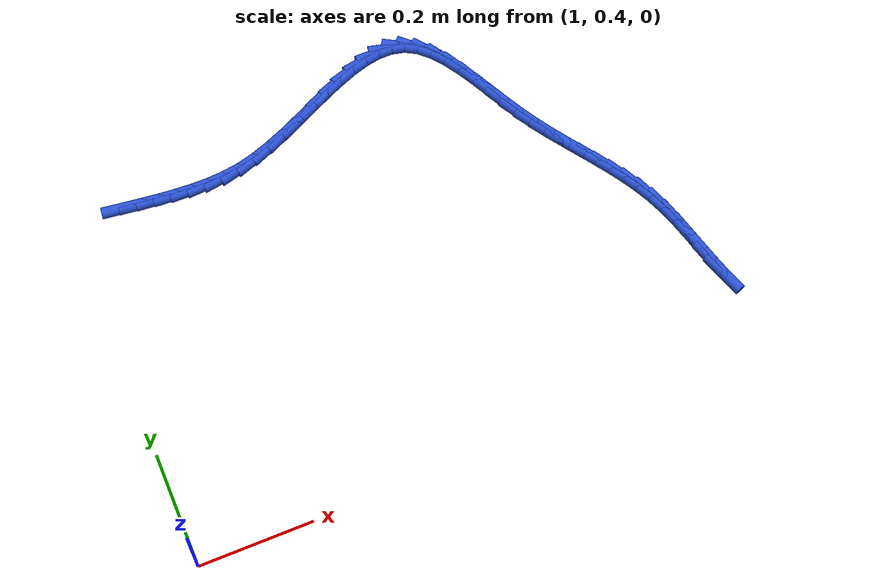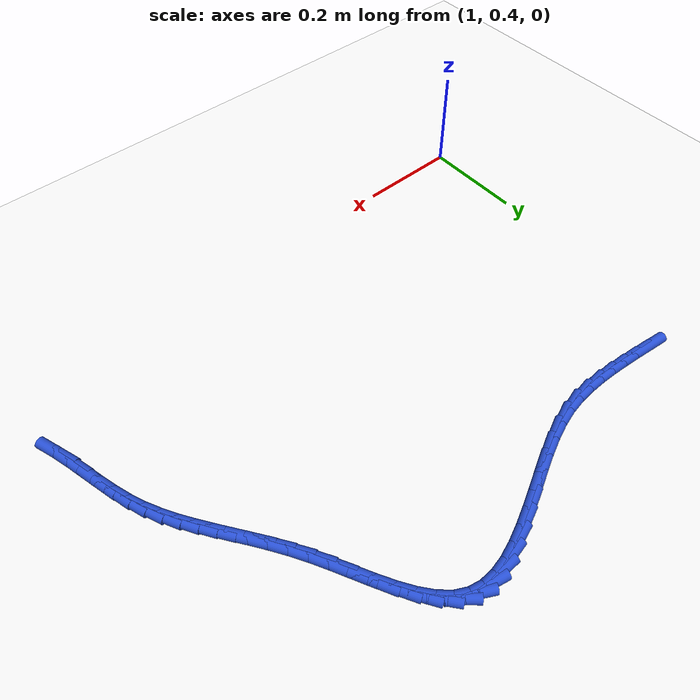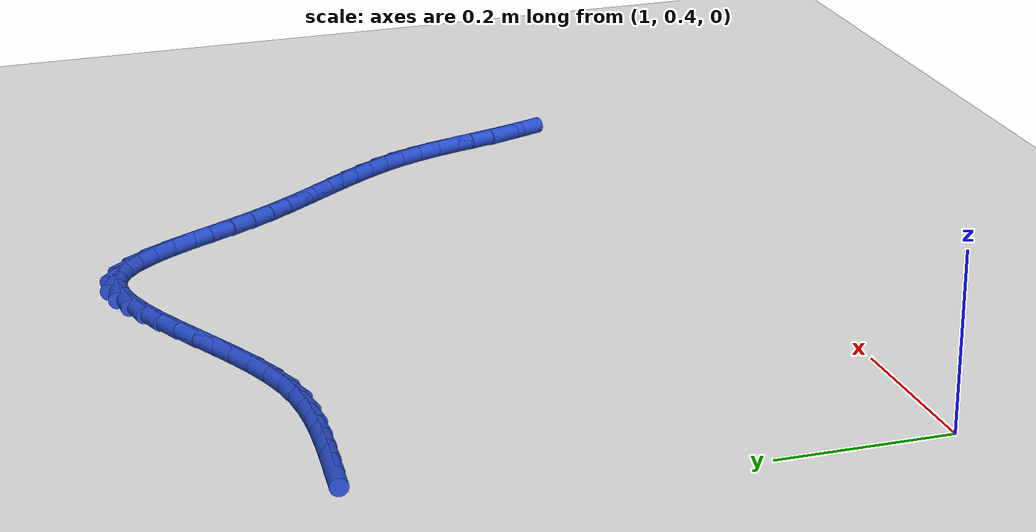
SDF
<sdf version="1.6">
 <world name="default">
  <model name="ground_plane">
   <static>1</static>
   <link name="link">
    <collision name="collision">
     <geometry><plane><normal>0 0 1</normal><size>100 100</size></plane></geometry>
     <surface><friction><ode><mu>100</mu><mu2>50</mu2></ode></friction></surface>
    </collision>
    <visual name="visual">
     <cast_shadows>0</cast_shadows>
     <geometry><plane><normal>0 0 1</normal><size>100 100</size></plane></geometry>
     <material>
      <script><uri>file://media/materials/scripts/gazebo.material</uri><name>Gazebo/WhiteGlow</name></script>
     </material>
    </visual>
   </link>
  </model>
  <model name="line">
   <link name="link_56">
    <pose>1.0972646162753887 1.0256910370883754 0.01 0 1.57 -0.1243517160511117</pose>
    <collision name="collision">
     <geometry><cylinder><radius>0.01</radius><length>0.08</length></cylinder></geometry>
    </collision>
    <visual name="visual">
     <material>
      <script><name>Gazebo/Blue</name><uri>file://media/materials/scripts/gazebo.material</uri></script>
     </material>
     <geometry><cylinder><radius>0.01</radius><length>0.08</length></cylinder></geometry>
    </visual>
   </link>
   <link name="link_57">
    <pose>1.1268595501378365 1.0219917688984357 0.01 0 1.57 -0.10980732972290626</pose>
    <collision name="collision">
     <geometry><cylinder><radius>0.01</radius><length>0.08</length></cylinder></geometry>
    </collision>
    <visual name="visual">
     <material>
      <script><name>Gazebo/Blue</name><uri>file://media/materials/scripts/gazebo.material</uri></script>
     </material>
     <geometry><cylinder><radius>0.01</radius><length>0.08</length></cylinder></geometry>
    </visual>
   </link>
   <link name="link_58">
    <pose>1.156405279717139 1.0187343283332702 0.01 0 1.57 -0.08743686101702561</pose>
    <collision name="collision">
     <geometry><cylinder><radius>0.01</radius><length>0.08</length></cylinder></geometry>
    </collision>
    <visual name="visual">
     <material>
      <script><name>Gazebo/Blue</name><uri>file://media/materials/scripts/gazebo.material</uri></script>
     </material>
     <geometry><cylinder><radius>0.01</radius><length>0.08</length></cylinder></geometry>
    </visual>
   </link>
   <link name="link_59">
    <pose>1.185900281993981 1.0161487855565294 0.01 0 1.57 -0.05635765165588818</pose>
    <collision name="collision">
     <geometry><cylinder><radius>0.01</radius><length>0.08</length></cylinder></geometry>
    </collision>
    <visual name="visual">
     <material>
      <script><name>Gazebo/Blue</name><uri>file://media/materials/scripts/gazebo.material</uri></script>
     </material>
     <geometry><cylinder><radius>0.01</radius><length>0.08</length></cylinder></geometry>
    </visual>
   </link>
   <link name="link_60">
    <pose>1.215351064227917 1.0144872491421746 0.01 0 1.57 -0.008259198600788196</pose>
    <collision name="collision">
     <geometry><cylinder><radius>0.01</radius><length>0.08</length></cylinder></geometry>
    </collision>
    <visual name="visual">
     <material>
      <script><name>Gazebo/Blue</name><uri>file://media/materials/scripts/gazebo.material</uri></script>
     </material>
     <geometry><cylinder><radius>0.01</radius><length>0.08</length></cylinder></geometry>
    </visual>
   </link>
   <link name="link_61">
    <pose>1.2448522253377379 1.0142435876531852 0.01 0 1.57 0.0611166905343832</pose>
    <collision name="collision">
     <geometry><cylinder><radius>0.01</radius><length>0.08</length></cylinder></geometry>
    </collision>
    <visual name="visual">
     <material>
      <script><name>Gazebo/Blue</name><uri>file://media/materials/scripts/gazebo.material</uri></script>
     </material>
     <geometry><cylinder><radius>0.01</radius><length>0.08</length></cylinder></geometry>
    </visual>
   </link>
   <link name="link_62">
    <pose>1.2745527955387879 1.0160610516686273 0.01 0 1.57 0.14942943219591917</pose>
    <collision name="collision">
     <geometry><cylinder><radius>0.01</radius><length>0.08</length></cylinder></geometry>
    </collision>
    <visual name="visual">
     <material>
      <script><name>Gazebo/Blue</name><uri>file://media/materials/scripts/gazebo.material</uri></script>
     </material>
     <geometry><cylinder><radius>0.01</radius><length>0.08</length></cylinder></geometry>
    </visual>
   </link>
   <link name="link_63">
    <pose>1.3046026101757537 1.0205851013758647 0.01 0 1.57 0.25008186617776634</pose>
    <collision name="collision">
     <geometry><cylinder><radius>0.01</radius><length>0.08</length></cylinder></geometry>
    </collision>
    <visual name="visual">
     <material>
      <script><name>Gazebo/Blue</name><uri>file://media/materials/scripts/gazebo.material</uri></script>
     </material>
     <geometry><cylinder><radius>0.01</radius><length>0.08</length></cylinder></geometry>
    </visual>
   </link>
   <link name="link_64">
    <pose>1.3351321515746652 1.0283832354786882 0.01 0 1.57 0.33535875574656215</pose>
    <collision name="collision">
     <geometry><cylinder><radius>0.01</radius><length>0.08</length></cylinder></geometry>
    </collision>
    <visual name="visual">
     <material>
      <script><name>Gazebo/Blue</name><uri>file://media/materials/scripts/gazebo.material</uri></script>
     </material>
     <geometry><cylinder><radius>0.01</radius><length>0.08</length></cylinder></geometry>
    </visual>
   </link>
   <link name="link_65">
    <pose>1.3660580938190656 1.0391616499519527 0.01 0 1.57 0.3939400495281755</pose>
    <collision name="collision">
     <geometry><cylinder><radius>0.01</radius><length>0.08</length></cylinder></geometry>
    </collision>
    <visual name="visual">
     <material>
      <script><name>Gazebo/Blue</name><uri>file://media/materials/scripts/gazebo.material</uri></script>
     </material>
     <geometry><cylinder><radius>0.01</radius><length>0.08</length></cylinder></geometry>
    </visual>
   </link>
   <link name="link_66">
    <pose>1.397164295591988 1.0520915086988987 0.01 0 1.57 0.4298895183108862</pose>
    <collision name="collision">
     <geometry><cylinder><radius>0.01</radius><length>0.08</length></cylinder></geometry>
    </collision>
    <visual name="visual">
     <material>
      <script><name>Gazebo/Blue</name><uri>file://media/materials/scripts/gazebo.material</uri></script>
     </material>
     <geometry><cylinder><radius>0.01</radius><length>0.08</length></cylinder></geometry>
    </visual>
   </link>
   <link name="link_67">
    <pose>1.4282326212708085 1.0663359417841962 0.01 0 1.57 0.44573077141376255</pose>
    <collision name="collision">
     <geometry><cylinder><radius>0.01</radius><length>0.08</length></cylinder></geometry>
    </collision>
    <visual name="visual">
     <material>
      <script><name>Gazebo/Blue</name><uri>file://media/materials/scripts/gazebo.material</uri></script>
     </material>
     <geometry><cylinder><radius>0.01</radius><length>0.08</length></cylinder></geometry>
    </visual>
   </link>
   <link name="link_68">
    <pose>1.4590449352329022 1.081058079272515 0.01 0 1.57 0.44216587081122244</pose>
    <collision name="collision">
     <geometry><cylinder><radius>0.01</radius><length>0.08</length></cylinder></geometry>
    </collision>
    <visual name="visual">
     <material>
      <script><name>Gazebo/Blue</name><uri>file://media/materials/scripts/gazebo.material</uri></script>
     </material>
     <geometry><cylinder><radius>0.01</radius><length>0.08</length></cylinder></geometry>
    </visual>
   </link>
   <link name="link_69">
    <pose>1.489383101855645 1.0954210512285256 0.01 0 1.57 0.4179704605778861</pose>
    <collision name="collision">
     <geometry><cylinder><radius>0.01</radius><length>0.08</length></cylinder></geometry>
    </collision>
    <visual name="visual">
     <material>
      <script><name>Gazebo/Blue</name><uri>file://media/materials/scripts/gazebo.material</uri></script>
     </material>
     <geometry><cylinder><radius>0.01</radius><length>0.08</length></cylinder></geometry>
    </visual>
   </link>
   <link name="link_70">
    <pose>1.5190289855164125 1.1085879877168978 0.01 0 1.57 0.36965519244252804</pose>
    <collision name="collision">
     <geometry><cylinder><radius>0.01</radius><length>0.08</length></cylinder></geometry>
    </collision>
    <visual name="visual">
     <material>
      <script><name>Gazebo/Blue</name><uri>file://media/materials/scripts/gazebo.material</uri></script>
     </material>
     <geometry><cylinder><radius>0.01</radius><length>0.08</length></cylinder></geometry>
    </visual>
   </link>
   <link name="link_71">
    <pose>1.5477644505925805 1.1197220188023014 0.01 0 1.57 0.29086457881611877</pose>
    <collision name="collision">
     <geometry><cylinder><radius>0.01</radius><length>0.08</length></cylinder></geometry>
    </collision>
    <visual name="visual">
     <material>
      <script><name>Gazebo/Blue</name><uri>file://media/materials/scripts/gazebo.material</uri></script>
     </material>
     <geometry><cylinder><radius>0.01</radius><length>0.08</length></cylinder></geometry>
    </visual>
   </link>
   <link name="link_72">
    <pose>1.5753713614615246 1.1279862745494067 0.01 0 1.57 0.17184391983965852</pose>
    <collision name="collision">
     <geometry><cylinder><radius>0.01</radius><length>0.08</length></cylinder></geometry>
    </collision>
    <visual name="visual">
     <material>
      <script><name>Gazebo/Blue</name><uri>file://media/materials/scripts/gazebo.material</uri></script>
     </material>
     <geometry><cylinder><radius>0.01</radius><length>0.08</length></cylinder></geometry>
    </visual>
   </link>
   <link name="link_73">
    <pose>1.60163158250062 1.1325438850228837 0.01 0 1.57 0.0005707648188440943</pose>
    <collision name="collision">
     <geometry><cylinder><radius>0.01</radius><length>0.08</length></cylinder></geometry>
    </collision>
    <visual name="visual">
     <material>
      <script><name>Gazebo/Blue</name><uri>file://media/materials/scripts/gazebo.material</uri></script>
     </material>
     <geometry><cylinder><radius>0.01</radius><length>0.08</length></cylinder></geometry>
    </visual>
   </link>
   <link name="link_74">
    <pose>1.626326978087243 1.1325579802874026 0.01 0 1.57 -0.23006187383835505</pose>
    <collision name="collision">
     <geometry><cylinder><radius>0.01</radius><length>0.08</length></cylinder></geometry>
    </collision>
    <visual name="visual">
     <material>
      <script><name>Gazebo/Blue</name><uri>file://media/materials/scripts/gazebo.material</uri></script>
     </material>
     <geometry><cylinder><radius>0.01</radius><length>0.08</length></cylinder></geometry>
    </visual>
   </link>
   <link name="link_75">
    <pose>1.6492394125987686 1.1271916904076331 0.01 0 1.57 -0.4998905959864863</pose>
    <collision name="collision">
     <geometry><cylinder><radius>0.01</radius><length>0.08</length></cylinder></geometry>
    </collision>
    <visual name="visual">
     <material>
      <script><name>Gazebo/Blue</name><uri>file://media/materials/scripts/gazebo.material</uri></script>
     </material>
     <geometry><cylinder><radius>0.01</radius><length>0.08</length></cylinder></geometry>
    </visual>
   </link>
   <link name="link_76">
    <pose>1.670193851416984 1.1157472048180916 0.01 0 1.57 -0.7271024810349903</pose>
    <collision name="collision">
     <geometry><cylinder><radius>0.01</radius><length>0.08</length></cylinder></geometry>
    </collision>
    <visual name="visual">
     <material>
      <script><name>Gazebo/Blue</name><uri>file://media/materials/scripts/gazebo.material</uri></script>
     </material>
     <geometry><cylinder><radius>0.01</radius><length>0.08</length></cylinder></geometry>
    </visual>
   </link>
   <link name="link_77">
    <pose>1.6893735726147119 1.098682758797335 0.01 0 1.57 -0.8836952000375713</pose>
    <collision name="collision">
     <geometry><cylinder><radius>0.01</radius><length>0.08</length></cylinder></geometry>
    </collision>
    <visual name="visual">
     <material>
      <script><name>Gazebo/Blue</name><uri>file://media/materials/scripts/gazebo.material</uri></script>
     </material>
     <geometry><cylinder><radius>0.01</radius><length>0.08</length></cylinder></geometry>
    </visual>
   </link>
   <link name="link_78">
    <pose>1.7071394502286417 1.0770295761925144 0.01 0 1.57 -0.98527541732175</pose>
    <collision name="collision">
     <geometry><cylinder><radius>0.01</radius><length>0.08</length></cylinder></geometry>
    </collision>
    <visual name="visual">
     <material>
      <script><name>Gazebo/Blue</name><uri>file://media/materials/scripts/gazebo.material</uri></script>
     </material>
     <geometry><cylinder><radius>0.01</radius><length>0.08</length></cylinder></geometry>
    </visual>
   </link>
   <link name="link_79">
    <pose>1.7238536321990623 1.0518229909227907 0.01 0 1.57 -1.0467162234346208</pose>
    <collision name="collision">
     <geometry><cylinder><radius>0.01</radius><length>0.08</length></cylinder></geometry>
    </collision>
    <visual name="visual">
     <material>
      <script><name>Gazebo/Blue</name><uri>file://media/materials/scripts/gazebo.material</uri></script>
     </material>
     <geometry><cylinder><radius>0.01</radius><length>0.08</length></cylinder></geometry>
    </visual>
   </link>
   <link name="link_80">
    <pose>1.7398782664662635 1.0240983369073253 0.01 0 1.57 -1.0776468118597726</pose>
    <collision name="collision">
     <geometry><cylinder><radius>0.01</radius><length>0.08</length></cylinder></geometry>
    </collision>
    <visual name="visual">
     <material>
      <script><name>Gazebo/Blue</name><uri>file://media/materials/scripts/gazebo.material</uri></script>
     </material>
     <geometry><cylinder><radius>0.01</radius><length>0.08</length></cylinder></geometry>
    </visual>
   </link>
   <link name="link_81">
    <pose>1.7555755009705327 0.9948909480652782 0.01 0 1.57 -1.0830444059983302</pose>
    <collision name="collision">
     <geometry><cylinder><radius>0.01</radius><length>0.08</length></cylinder></geometry>
    </collision>
    <visual name="visual">
     <material>
      <script><name>Gazebo/Blue</name><uri>file://media/materials/scripts/gazebo.material</uri></script>
     </material>
     <geometry><cylinder><radius>0.01</radius><length>0.08</length></cylinder></geometry>
    </visual>
   </link>
   <link name="link_82">
    <pose>1.77130748365216 0.965236158315811 0.01 0 1.57 -1.064207322664841</pose>
    <collision name="collision">
     <geometry><cylinder><radius>0.01</radius><length>0.08</length></cylinder></geometry>
    </collision>
    <visual name="visual">
     <material>
      <script><name>Gazebo/Blue</name><uri>file://media/materials/scripts/gazebo.material</uri></script>
     </material>
     <geometry><cylinder><radius>0.01</radius><length>0.08</length></cylinder></geometry>
    </visual>
   </link>
   <link name="link_83">
    <pose>1.7874363624514342 0.9361693015780844 0.01 0 1.57 -1.023710059965437</pose>
    <collision name="collision">
     <geometry><cylinder><radius>0.01</radius><length>0.08</length></cylinder></geometry>
    </collision>
    <visual name="visual">
     <material>
      <script><name>Gazebo/Blue</name><uri>file://media/materials/scripts/gazebo.material</uri></script>
     </material>
     <geometry><cylinder><radius>0.01</radius><length>0.08</length></cylinder></geometry>
    </visual>
   </link>
   <link name="link_84">
    <pose>1.804249563611364 0.9085661023460609 0.01 0 1.57 -0.984880510793661</pose>
    <collision name="collision">
     <geometry><cylinder><radius>0.01</radius><length>0.08</length></cylinder></geometry>
    </collision>
    <visual name="visual">
     <material>
      <script><name>Gazebo/Blue</name><uri>file://media/materials/scripts/gazebo.material</uri></script>
     </material>
     <geometry><cylinder><radius>0.01</radius><length>0.08</length></cylinder></geometry>
    </visual>
   </link>
   <link name="link_85">
    <pose>1.8216132490646366 0.8824024426733574 0.01 0 1.57 -0.9577037035107082</pose>
    <collision name="collision">
     <geometry><cylinder><radius>0.01</radius><length>0.08</length></cylinder></geometry>
    </collision>
    <visual name="visual">
     <material>
      <script><name>Gazebo/Blue</name><uri>file://media/materials/scripts/gazebo.material</uri></script>
     </material>
     <geometry><cylinder><radius>0.01</radius><length>0.08</length></cylinder></geometry>
    </visual>
   </link>
   <link name="link_86">
    <pose>1.8392460849113683 0.8573391458567308 0.01 0 1.57 -0.9434551822479464</pose>
    <collision name="collision">
     <geometry><cylinder><radius>0.01</radius><length>0.08</length></cylinder></geometry>
    </collision>
    <visual name="visual">
     <material>
      <script><name>Gazebo/Blue</name><uri>file://media/materials/scripts/gazebo.material</uri></script>
     </material>
     <geometry><cylinder><radius>0.01</radius><length>0.08</length></cylinder></geometry>
    </visual>
   </link>
   <link name="link_87">
    <pose>1.8568665801765267 0.8330366996722612 0.01 0 1.57 -0.9431352384406895</pose>
    <collision name="collision">
     <geometry><cylinder><radius>0.01</radius><length>0.08</length></cylinder></geometry>
    </collision>
    <visual name="visual">
     <material>
      <script><name>Gazebo/Blue</name><uri>file://media/materials/scripts/gazebo.material</uri></script>
     </material>
     <geometry><cylinder><radius>0.01</radius><length>0.08</length></cylinder></geometry>
    </visual>
   </link>
   <link name="link_88">
    <pose>1.8741932438850775 0.8091555918960279 0.01 0 1.57 -0.9574850481734419</pose>
    <collision name="collision">
     <geometry><cylinder><radius>0.01</radius><length>0.08</length></cylinder></geometry>
    </collision>
    <visual name="visual">
     <material>
      <script><name>Gazebo/Blue</name><uri>file://media/materials/scripts/gazebo.material</uri></script>
     </material>
     <geometry><cylinder><radius>0.01</radius><length>0.08</length></cylinder></geometry>
    </visual>
   </link>
   <link name="link_89">
    <pose>1.8909445850619886 0.78535631030411 0.01 0 1.57 -0.9869332958429147</pose>
    <collision name="collision">
     <geometry><cylinder><radius>0.01</radius><length>0.08</length></cylinder></geometry>
    </collision>
    <visual name="visual">
     <material>
      <script><name>Gazebo/Blue</name><uri>file://media/materials/scripts/gazebo.material</uri></script>
     </material>
     <geometry><cylinder><radius>0.01</radius><length>0.08</length></cylinder></geometry>
    </visual>
   </link>
   <link name="link_90">
    <pose>1.9068391127322266 0.7612993426725871 0.01 0 1.57 -1.0314594468775058</pose>
    <collision name="collision">
     <geometry><cylinder><radius>0.01</radius><length>0.08</length></cylinder></geometry>
    </collision>
    <visual name="visual">
     <material>
      <script><name>Gazebo/Blue</name><uri>file://media/materials/scripts/gazebo.material</uri></script>
     </material>
     <geometry><cylinder><radius>0.01</radius><length>0.08</length></cylinder></geometry>
    </visual>
   </link>
   <link name="link_91">
    <pose>1.9215953359207578 0.7366451767775387 0.01 0 1.57 -1.0903801471559447</pose>
    <collision name="collision">
     <geometry><cylinder><radius>0.01</radius><length>0.08</length></cylinder></geometry>
    </collision>
    <visual name="visual">
     <material>
      <script><name>Gazebo/Blue</name><uri>file://media/materials/scripts/gazebo.material</uri></script>
     </material>
     <geometry><cylinder><radius>0.01</radius><length>0.08</length></cylinder></geometry>
    </visual>
   </link>
   <link name="link_92">
    <pose>1.934931763652549 0.7110543003950445 0.01 0 1.57 -1.161731686605096</pose>
    <collision name="collision">
     <geometry><cylinder><radius>0.01</radius><length>0.08</length></cylinder></geometry>
    </collision>
    <visual name="visual">
     <material>
      <script><name>Gazebo/Blue</name><uri>file://media/materials/scripts/gazebo.material</uri></script>
     </material>
     <geometry><cylinder><radius>0.01</radius><length>0.08</length></cylinder></geometry>
    </visual>
   </link>
   <link name="link_93">
    <pose>1.946575748586977 0.6841951114296162 0.01 0 1.57 -1.2285390891314243</pose>
    <collision name="collision">
     <geometry><cylinder><radius>0.01</radius><length>0.08</length></cylinder></geometry>
    </collision>
    <visual name="visual">
     <material>
      <script><name>Gazebo/Blue</name><uri>file://media/materials/scripts/gazebo.material</uri></script>
     </material>
     <geometry><cylinder><radius>0.01</radius><length>0.08</length></cylinder></geometry>
    </visual>
   </link>
   <link name="link_94">
    <pose>1.956603839460509 0.6560483438333529 0.01 0 1.57 -1.2720278520069448</pose>
    <collision name="collision">
     <geometry><cylinder><radius>0.01</radius><length>0.08</length></cylinder></geometry>
    </collision>
    <visual name="visual">
     <material>
      <script><name>Gazebo/Blue</name><uri>file://media/materials/scripts/gazebo.material</uri></script>
     </material>
     <geometry><cylinder><radius>0.01</radius><length>0.08</length></cylinder></geometry>
    </visual>
   </link>
   <link name="link_95">
    <pose>1.9655493518860925 0.6270032835731909 0.01 0 1.57 -1.292779798058975</pose>
    <collision name="collision">
     <geometry><cylinder><radius>0.01</radius><length>0.08</length></cylinder></geometry>
    </collision>
    <visual name="visual">
     <material>
      <script><name>Gazebo/Blue</name><uri>file://media/materials/scripts/gazebo.material</uri></script>
     </material>
     <geometry><cylinder><radius>0.01</radius><length>0.08</length></cylinder></geometry>
    </visual>
   </link>
   <link name="link_96">
    <pose>1.973976446791955 0.597476805997773 0.01 0 1.57 -1.2919262130516418</pose>
    <collision name="collision">
     <geometry><cylinder><radius>0.01</radius><length>0.08</length></cylinder></geometry>
    </collision>
    <visual name="visual">
     <material>
      <script><name>Gazebo/Blue</name><uri>file://media/materials/scripts/gazebo.material</uri></script>
     </material>
     <geometry><cylinder><radius>0.01</radius><length>0.08</length></cylinder></geometry>
    </visual>
   </link>
   <link name="link_97">
    <pose>1.9824492851063238 0.5678857864557418 0.01 0 1.57 -1.269605714386445</pose>
    <collision name="collision">
     <geometry><cylinder><radius>0.01</radius><length>0.08</length></cylinder></geometry>
    </collision>
    <visual name="visual">
     <material>
      <script><name>Gazebo/Blue</name><uri>file://media/materials/scripts/gazebo.material</uri></script>
     </material>
     <geometry><cylinder><radius>0.01</radius><length>0.08</length></cylinder></geometry>
    </visual>
   </link>
   <link name="link_98">
    <pose>1.9915320277574282 0.5386471002957406 0.01 0 1.57 -1.2249983465259413</pose>
    <collision name="collision">
     <geometry><cylinder><radius>0.01</radius><length>0.08</length></cylinder></geometry>
    </collision>
    <visual name="visual">
     <material>
      <script><name>Gazebo/Blue</name><uri>file://media/materials/scripts/gazebo.material</uri></script>
     </material>
     <geometry><cylinder><radius>0.01</radius><length>0.08</length></cylinder></geometry>
    </visual>
   </link>
  </model>
 </world>
</sdf>
